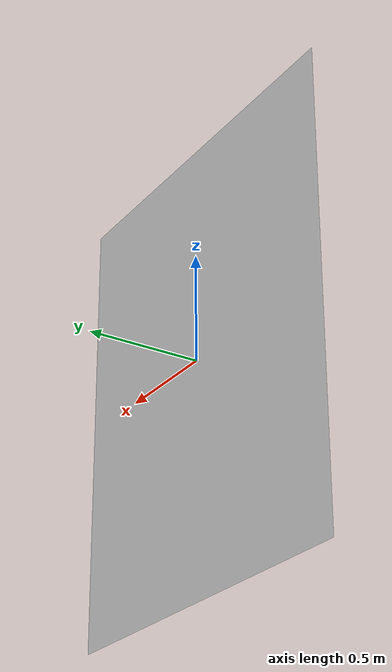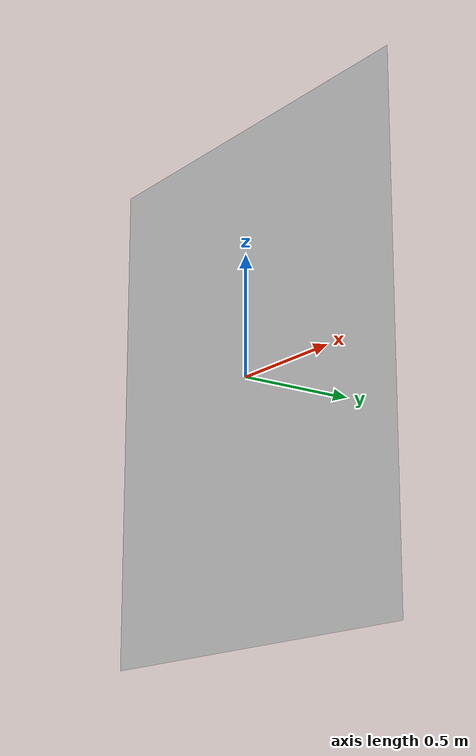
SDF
<?xml version="1.0" ?>
<sdf version="1.6">
  <model name="pista_puzzlebot">
    <static>true</static>
    <link name="link_pista">
      <!-- Posición inicial en el mundo (X Y Z Roll Pitch Yaw) -->
      <pose>0 0 0 0 0 0</pose>

      <!-- Colisión: Define la superficie física para que el PuzzleBot no traspase el suelo -->
      <collision name="collision_pista">
        <geometry>
          <mesh>
            <!-- Si usaste .obj, cambia la extensión a .obj abajo -->
            <uri>package://gemelo_digital_puzzlebot/meshes/Mapa_puzzlebot.obj</uri>
            <scale>1 1 1</scale>
          </mesh>
        </geometry>
        <surface>
          <friction>
            <ode>
              <!-- Coeficientes de fricción para que las llantas del robot tengan agarre -->
              <mu>1.0</mu>
              <mu2>1.0</mu2>
            </ode>
          </friction>
        </surface>
      </collision>

      <!-- Visual: Lo que la cámara del PuzzleBot y tú verán en la pantalla -->
      <visual name="visual_pista">
        <geometry>
          <mesh>
            <!-- Si usaste .obj, cambia la extensión a .obj abajo -->
            <uri>package://gemelo_digital_puzzlebot/meshes/Mapa_puzzlebot.obj</uri>
            <scale>1 1 1</scale>
          </mesh>
        </geometry>
        <!-- Gazebo usará los materiales y texturas vinculados en tu archivo 3D -->
      </visual>
    </link>
  </model>
</sdf>
